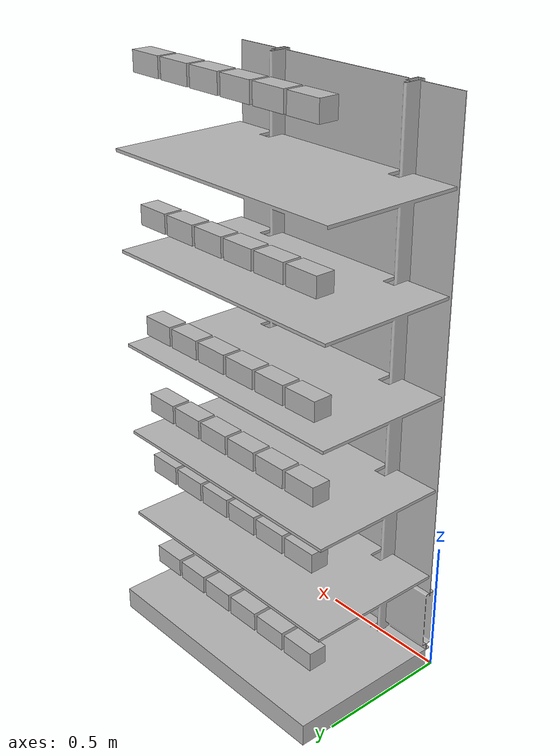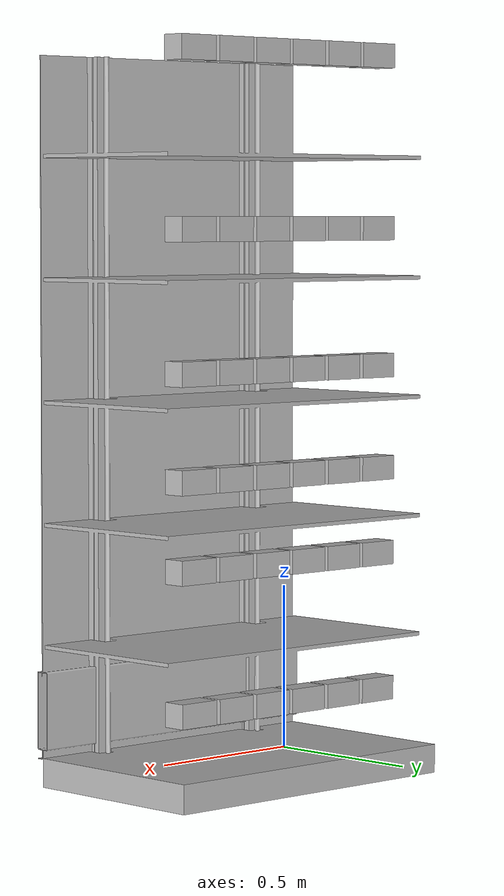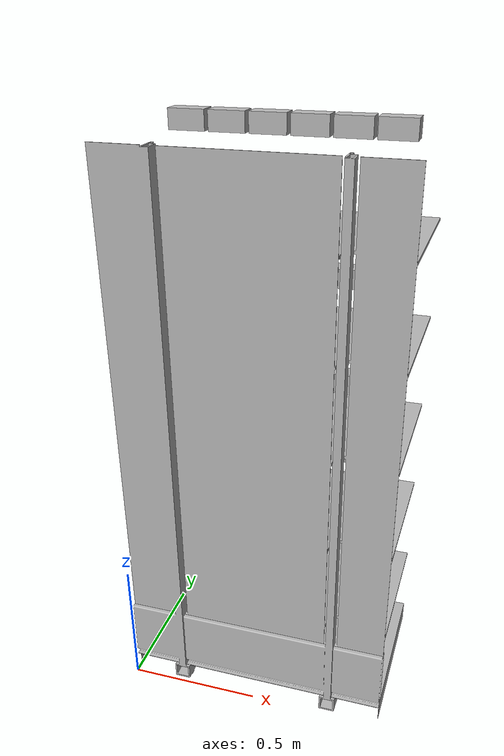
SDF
<?xml version="1.0"?>
<sdf version='1.6'>
  <model name='AH_shelf_filled_thee'>
    <static>1</static>
    <link name='link'>
      <inertial>
        <mass>1</mass>
        <inertia>
          <ixx>1</ixx>
          <ixy>0</ixy>
          <ixz>0</ixz>
          <iyy>1</iyy>
          <iyz>0</iyz>
          <izz>1</izz>
        </inertia>
      </inertial>
      <pose frame=''>-0 0 0 0 0 0</pose>

      <visual name='visual'>
        <pose frame=''>0 0 0 0 0 0</pose>
        <geometry>
          <mesh>
            <uri>model://AH_shelf/AH_shelf.dae</uri>
            <scale>1 1 1</scale>
          </mesh>
        </geometry>
        <transparency>0</transparency>
        <cast_shadows>1</cast_shadows>
      </visual>

      <collision name='collision'>
        <laser_retro>0</laser_retro>
        <max_contacts>10</max_contacts>
        <pose frame=''>0 0 0 0 -0 0</pose>
        <geometry>
          <mesh>
            <uri>model://AH_shelf/AH_shelf.dae</uri>
            <scale>1 1 1</scale>
          </mesh>
        </geometry>
        <surface>
          <friction>
            <ode>
              <mu>1</mu>
              <mu2>1</mu2>
              <fdir1>0 0 0</fdir1>
              <slip1>0</slip1>
              <slip2>0</slip2>
            </ode>
            <torsional>
              <coefficient>1</coefficient>
              <patch_radius>0</patch_radius>
              <surface_radius>0</surface_radius>
              <use_patch_radius>1</use_patch_radius>
              <ode>
                <slip>0</slip>
              </ode>
            </torsional>
          </friction>
          <bounce>
            <restitution_coefficient>0</restitution_coefficient>
            <threshold>1e+06</threshold>
          </bounce>
          <contact>
            <collide_without_contact>0</collide_without_contact>
            <collide_without_contact_bitmask>1</collide_without_contact_bitmask>
            <collide_bitmask>1</collide_bitmask>
            <ode>
              <soft_cfm>0</soft_cfm>
              <soft_erp>0.2</soft_erp>
              <kp>1e+13</kp>
              <kd>1</kd>
              <max_vel>0.01</max_vel>
              <min_depth>0</min_depth>
            </ode>
            <bullet>
              <split_impulse>1</split_impulse>
              <split_impulse_penetration_threshold>-0.01</split_impulse_penetration_threshold>
              <soft_cfm>0</soft_cfm>
              <soft_erp>0.2</soft_erp>
              <kp>1e+13</kp>
              <kd>1</kd>
            </bullet>
          </contact>
        </surface>
      </collision>
    </link>

  <model name="board0">
    <pose>0 0.5 2.1 0 0 0</pose>

    <include>
      <uri>model://AH_thee_bosvruchten_tag36_11_00100</uri>
      <pose>0.14285714285714285 0 0 0 0 1.57</pose>
    </include>

    <include>
      <uri>model://AH_thee_bosvruchten_tag36_11_00101</uri>
      <pose>0.2857142857142857 0 0 0 0 1.57</pose>
    </include>

    <include>
      <uri>model://AH_thee_bosvruchten_tag36_11_00102</uri>
      <pose>0.42857142857142855 0 0 0 0 1.57</pose>
    </include>

    <include>
      <uri>model://AH_thee_bosvruchten_tag36_11_00103</uri>
      <pose>0.5714285714285714 0 0 0 0 1.57</pose>
    </include>

    <include>
      <uri>model://AH_thee_bosvruchten_tag36_11_00104</uri>
      <pose>0.7142857142857142 0 0 0 0 1.57</pose>
    </include>

    <include>
      <uri>model://AH_thee_bosvruchten_tag36_11_00105</uri>
      <pose>0.8571428571428571 0 0 0 0 1.57</pose>
    </include>

  </model>

  <model name="board1">
    <pose>0 0.5 1.6 0 0 0</pose>

    <include>
      <uri>model://AH_thee_bosvruchten_tag36_11_00106</uri>
      <pose>0.14285714285714285 0 0 0 0 1.57</pose>
    </include>

    <include>
      <uri>model://AH_thee_bosvruchten_tag36_11_00107</uri>
      <pose>0.2857142857142857 0 0 0 0 1.57</pose>
    </include>

    <include>
      <uri>model://AH_thee_bosvruchten_tag36_11_00108</uri>
      <pose>0.42857142857142855 0 0 0 0 1.57</pose>
    </include>

    <include>
      <uri>model://AH_thee_bosvruchten_tag36_11_00109</uri>
      <pose>0.5714285714285714 0 0 0 0 1.57</pose>
    </include>

    <include>
      <uri>model://AH_thee_bosvruchten_tag36_11_00111</uri>
      <pose>0.7142857142857142 0 0 0 0 1.57</pose>
    </include>

    <include>
      <uri>model://AH_thee_bosvruchten_tag36_11_00112</uri>
      <pose>0.8571428571428571 0 0 0 0 1.57</pose>
    </include>

  </model>

  <model name="board2">
    <pose>0 0.5 1.2 0 0 0</pose>

    <include>
      <uri>model://AH_thee_bosvruchten_tag36_11_00113</uri>
      <pose>0.14285714285714285 0 0 0 0 1.57</pose>
    </include>

    <include>
      <uri>model://AH_thee_bosvruchten_tag36_11_00114</uri>
      <pose>0.2857142857142857 0 0 0 0 1.57</pose>
    </include>

    <include>
      <uri>model://AH_thee_bosvruchten_tag36_11_00115</uri>
      <pose>0.42857142857142855 0 0 0 0 1.57</pose>
    </include>

    <include>
      <uri>model://AH_thee_bosvruchten_tag36_11_00116</uri>
      <pose>0.5714285714285714 0 0 0 0 1.57</pose>
    </include>

    <include>
      <uri>model://AH_thee_bosvruchten_tag36_11_00117</uri>
      <pose>0.7142857142857142 0 0 0 0 1.57</pose>
    </include>

    <include>
      <uri>model://AH_thee_bosvruchten_tag36_11_00118</uri>
      <pose>0.8571428571428571 0 0 0 0 1.57</pose>
    </include>

  </model>

  <model name="board3">
    <pose>0 0.5 0.9 0 0 0</pose>

    <include>
      <uri>model://AH_thee_mango_tag36_11_00121</uri>
      <pose>0.14285714285714285 0 0 0 0 1.57</pose>
    </include>

    <include>
      <uri>model://AH_thee_mango_tag36_11_00122</uri>
      <pose>0.2857142857142857 0 0 0 0 1.57</pose>
    </include>

    <include>
      <uri>model://AH_thee_mango_tag36_11_00123</uri>
      <pose>0.42857142857142855 0 0 0 0 1.57</pose>
    </include>

    <include>
      <uri>model://AH_thee_mango_tag36_11_00124</uri>
      <pose>0.5714285714285714 0 0 0 0 1.57</pose>
    </include>

    <include>
      <uri>model://AH_thee_mango_tag36_11_00125</uri>
      <pose>0.7142857142857142 0 0 0 0 1.57</pose>
    </include>

    <include>
      <uri>model://AH_thee_mango_tag36_11_00126</uri>
      <pose>0.8571428571428571 0 0 0 0 1.57</pose>
    </include>

  </model>

  <model name="board4">
    <pose>0 0.5 0.65 0 0 0</pose>

    <include>
      <uri>model://AH_thee_mango_tag36_11_00127</uri>
      <pose>0.14285714285714285 0 0 0 0 1.57</pose>
    </include>

    <include>
      <uri>model://AH_thee_mango_tag36_11_00128</uri>
      <pose>0.2857142857142857 0 0 0 0 1.57</pose>
    </include>

    <include>
      <uri>model://AH_thee_mango_tag36_11_00129</uri>
      <pose>0.42857142857142855 0 0 0 0 1.57</pose>
    </include>

    <include>
      <uri>model://AH_thee_mango_tag36_11_00130</uri>
      <pose>0.5714285714285714 0 0 0 0 1.57</pose>
    </include>

    <include>
      <uri>model://AH_thee_mango_tag36_11_00131</uri>
      <pose>0.7142857142857142 0 0 0 0 1.57</pose>
    </include>

    <include>
      <uri>model://AH_thee_mango_tag36_11_00132</uri>
      <pose>0.8571428571428571 0 0 0 0 1.57</pose>
    </include>

  </model>

  <model name="board5">
    <pose>0 0.5 0.25 0 0 0</pose>

    <include>
      <uri>model://AH_thee_mango_tag36_11_00133</uri>
      <pose>0.14285714285714285 0 0 0 0 1.57</pose>
    </include>

    <include>
      <uri>model://AH_thee_mango_tag36_11_00134</uri>
      <pose>0.2857142857142857 0 0 0 0 1.57</pose>
    </include>

    <include>
      <uri>model://AH_thee_mango_tag36_11_00135</uri>
      <pose>0.42857142857142855 0 0 0 0 1.57</pose>
    </include>

    <include>
      <uri>model://AH_thee_mango_tag36_11_00136</uri>
      <pose>0.5714285714285714 0 0 0 0 1.57</pose>
    </include>

    <include>
      <uri>model://AH_thee_mango_tag36_11_00137</uri>
      <pose>0.7142857142857142 0 0 0 0 1.57</pose>
    </include>

    <include>
      <uri>model://AH_thee_mango_tag36_11_00138</uri>
      <pose>0.8571428571428571 0 0 0 0 1.57</pose>
    </include>

  </model>

  </model>
</sdf>

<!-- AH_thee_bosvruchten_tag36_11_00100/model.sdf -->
<sdf version='1.6'>
  <model name='AH_thee_bosvruchten_tag36_11_00100'>
    <static>0</static>
    <link name='link_0'>

      <inertial>
        <mass>0.1</mass>
        <inertia>
          <ixx>1.4e-03</ixx>
          <ixy>0</ixy>
          <ixz>0</ixz>
          <iyy>1.4e-03</iyy>
          <iyz>0</iyz>
          <izz>2.8e-03</izz>
        </inertia>
      </inertial>

      <pose frame=''>-0 0 0 0 -0 0</pose>

      <visual name='visual'>
        <pose frame=''>0 0 0 0 -0 0</pose>
        <geometry>
          <mesh>
            <uri>model://AH_thee_bosvruchten/AH_thee_bosvruchten_tag36_11_00100/AH_thee_bosvruchten_tag36_11_00100.dae</uri>
            <scale>1 1 1</scale>
          </mesh>
        </geometry>
        <transparency>0</transparency>
        <cast_shadows>1</cast_shadows>
      </visual>

      <collision name='collision'>
        <laser_retro>0</laser_retro>
        <max_contacts>10</max_contacts>
        <pose frame=''>0 0 0 0 -0 0</pose>
        <geometry>
          <mesh>
            <uri>model://AH_thee_bosvruchten/AH_thee_bosvruchten_tag36_11_00100/AH_thee_bosvruchten_tag36_11_00100.dae</uri>
            <scale>1 1 1</scale>
          </mesh>
        </geometry>
        <surface>
          <friction>
            <ode>
              <mu>1</mu>
              <mu2>1</mu2>
              <fdir1>0 0 0</fdir1>
              <slip1>0</slip1>
              <slip2>0</slip2>
            </ode>
            <torsional>
              <coefficient>1</coefficient>
              <patch_radius>0</patch_radius>
              <surface_radius>0</surface_radius>
              <use_patch_radius>1</use_patch_radius>
              <ode>
                <slip>0</slip>
              </ode>
            </torsional>
          </friction>
          <bounce>
            <restitution_coefficient>0</restitution_coefficient>
            <threshold>1e+06</threshold>
          </bounce>
          <contact>
            <collide_without_contact>0</collide_without_contact>
            <collide_without_contact_bitmask>1</collide_without_contact_bitmask>
            <collide_bitmask>1</collide_bitmask>
            <ode>
              <soft_cfm>0</soft_cfm>
              <soft_erp>0.2</soft_erp>
              <kp>1e+13</kp>
              <kd>1</kd>
              <max_vel>0.01</max_vel>
              <min_depth>0</min_depth>
            </ode>
            <bullet>
              <split_impulse>1</split_impulse>
              <split_impulse_penetration_threshold>-0.01</split_impulse_penetration_threshold>
              <soft_cfm>0</soft_cfm>
              <soft_erp>0.2</soft_erp>
              <kp>1e+13</kp>
              <kd>1</kd>
            </bullet>
          </contact>
        </surface>
      </collision>

    </link>
  </model>
</sdf>

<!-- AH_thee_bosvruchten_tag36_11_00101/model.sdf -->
<sdf version='1.6'>
  <model name='AH_thee_bosvruchten_tag36_11_00101'>
    <static>0</static>
    <link name='link_0'>

      <inertial>
        <mass>0.1</mass>
        <inertia>
          <ixx>1.4e-03</ixx>
          <ixy>0</ixy>
          <ixz>0</ixz>
          <iyy>1.4e-03</iyy>
          <iyz>0</iyz>
          <izz>2.8e-03</izz>
        </inertia>
      </inertial>

      <pose frame=''>-0 0 0 0 -0 0</pose>

      <visual name='visual'>
        <pose frame=''>0 0 0 0 -0 0</pose>
        <geometry>
          <mesh>
            <uri>model://AH_thee_bosvruchten/AH_thee_bosvruchten_tag36_11_00101/AH_thee_bosvruchten_tag36_11_00101.dae</uri>
            <scale>1 1 1</scale>
          </mesh>
        </geometry>
        <transparency>0</transparency>
        <cast_shadows>1</cast_shadows>
      </visual>

      <collision name='collision'>
        <laser_retro>0</laser_retro>
        <max_contacts>10</max_contacts>
        <pose frame=''>0 0 0 0 -0 0</pose>
        <geometry>
          <mesh>
            <uri>model://AH_thee_bosvruchten/AH_thee_bosvruchten_tag36_11_00101/AH_thee_bosvruchten_tag36_11_00101.dae</uri>
            <scale>1 1 1</scale>
          </mesh>
        </geometry>
        <surface>
          <friction>
            <ode>
              <mu>1</mu>
              <mu2>1</mu2>
              <fdir1>0 0 0</fdir1>
              <slip1>0</slip1>
              <slip2>0</slip2>
            </ode>
            <torsional>
              <coefficient>1</coefficient>
              <patch_radius>0</patch_radius>
              <surface_radius>0</surface_radius>
              <use_patch_radius>1</use_patch_radius>
              <ode>
                <slip>0</slip>
              </ode>
            </torsional>
          </friction>
          <bounce>
            <restitution_coefficient>0</restitution_coefficient>
            <threshold>1e+06</threshold>
          </bounce>
          <contact>
            <collide_without_contact>0</collide_without_contact>
            <collide_without_contact_bitmask>1</collide_without_contact_bitmask>
            <collide_bitmask>1</collide_bitmask>
            <ode>
              <soft_cfm>0</soft_cfm>
              <soft_erp>0.2</soft_erp>
              <kp>1e+13</kp>
              <kd>1</kd>
              <max_vel>0.01</max_vel>
              <min_depth>0</min_depth>
            </ode>
            <bullet>
              <split_impulse>1</split_impulse>
              <split_impulse_penetration_threshold>-0.01</split_impulse_penetration_threshold>
              <soft_cfm>0</soft_cfm>
              <soft_erp>0.2</soft_erp>
              <kp>1e+13</kp>
              <kd>1</kd>
            </bullet>
          </contact>
        </surface>
      </collision>

    </link>
  </model>
</sdf>

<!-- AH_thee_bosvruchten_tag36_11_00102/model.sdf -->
<sdf version='1.6'>
  <model name='AH_thee_bosvruchten_tag36_11_00102'>
    <static>0</static>
    <link name='link_0'>

      <inertial>
        <mass>0.1</mass>
        <inertia>
          <ixx>1.4e-03</ixx>
          <ixy>0</ixy>
          <ixz>0</ixz>
          <iyy>1.4e-03</iyy>
          <iyz>0</iyz>
          <izz>2.8e-03</izz>
        </inertia>
      </inertial>

      <pose frame=''>-0 0 0 0 -0 0</pose>

      <visual name='visual'>
        <pose frame=''>0 0 0 0 -0 0</pose>
        <geometry>
          <mesh>
            <uri>model://AH_thee_bosvruchten/AH_thee_bosvruchten_tag36_11_00102/AH_thee_bosvruchten_tag36_11_00102.dae</uri>
            <scale>1 1 1</scale>
          </mesh>
        </geometry>
        <transparency>0</transparency>
        <cast_shadows>1</cast_shadows>
      </visual>

      <collision name='collision'>
        <laser_retro>0</laser_retro>
        <max_contacts>10</max_contacts>
        <pose frame=''>0 0 0 0 -0 0</pose>
        <geometry>
          <mesh>
            <uri>model://AH_thee_bosvruchten/AH_thee_bosvruchten_tag36_11_00102/AH_thee_bosvruchten_tag36_11_00102.dae</uri>
            <scale>1 1 1</scale>
          </mesh>
        </geometry>
        <surface>
          <friction>
            <ode>
              <mu>1</mu>
              <mu2>1</mu2>
              <fdir1>0 0 0</fdir1>
              <slip1>0</slip1>
              <slip2>0</slip2>
            </ode>
            <torsional>
              <coefficient>1</coefficient>
              <patch_radius>0</patch_radius>
              <surface_radius>0</surface_radius>
              <use_patch_radius>1</use_patch_radius>
              <ode>
                <slip>0</slip>
              </ode>
            </torsional>
          </friction>
          <bounce>
            <restitution_coefficient>0</restitution_coefficient>
            <threshold>1e+06</threshold>
          </bounce>
          <contact>
            <collide_without_contact>0</collide_without_contact>
            <collide_without_contact_bitmask>1</collide_without_contact_bitmask>
            <collide_bitmask>1</collide_bitmask>
            <ode>
              <soft_cfm>0</soft_cfm>
              <soft_erp>0.2</soft_erp>
              <kp>1e+13</kp>
              <kd>1</kd>
              <max_vel>0.01</max_vel>
              <min_depth>0</min_depth>
            </ode>
            <bullet>
              <split_impulse>1</split_impulse>
              <split_impulse_penetration_threshold>-0.01</split_impulse_penetration_threshold>
              <soft_cfm>0</soft_cfm>
              <soft_erp>0.2</soft_erp>
              <kp>1e+13</kp>
              <kd>1</kd>
            </bullet>
          </contact>
        </surface>
      </collision>

    </link>
  </model>
</sdf>

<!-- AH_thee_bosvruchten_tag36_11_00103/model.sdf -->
<sdf version='1.6'>
  <model name='AH_thee_bosvruchten_tag36_11_00103'>
    <static>0</static>
    <link name='link_0'>

      <inertial>
        <mass>0.1</mass>
        <inertia>
          <ixx>1.4e-03</ixx>
          <ixy>0</ixy>
          <ixz>0</ixz>
          <iyy>1.4e-03</iyy>
          <iyz>0</iyz>
          <izz>2.8e-03</izz>
        </inertia>
      </inertial>

      <pose frame=''>-0 0 0 0 -0 0</pose>

      <visual name='visual'>
        <pose frame=''>0 0 0 0 -0 0</pose>
        <geometry>
          <mesh>
            <uri>model://AH_thee_bosvruchten/AH_thee_bosvruchten_tag36_11_00103/AH_thee_bosvruchten_tag36_11_00103.dae</uri>
            <scale>1 1 1</scale>
          </mesh>
        </geometry>
        <transparency>0</transparency>
        <cast_shadows>1</cast_shadows>
      </visual>

      <collision name='collision'>
        <laser_retro>0</laser_retro>
        <max_contacts>10</max_contacts>
        <pose frame=''>0 0 0 0 -0 0</pose>
        <geometry>
          <mesh>
            <uri>model://AH_thee_bosvruchten/AH_thee_bosvruchten_tag36_11_00103/AH_thee_bosvruchten_tag36_11_00103.dae</uri>
            <scale>1 1 1</scale>
          </mesh>
        </geometry>
        <surface>
          <friction>
            <ode>
              <mu>1</mu>
              <mu2>1</mu2>
              <fdir1>0 0 0</fdir1>
              <slip1>0</slip1>
              <slip2>0</slip2>
            </ode>
            <torsional>
              <coefficient>1</coefficient>
              <patch_radius>0</patch_radius>
              <surface_radius>0</surface_radius>
              <use_patch_radius>1</use_patch_radius>
              <ode>
                <slip>0</slip>
              </ode>
            </torsional>
          </friction>
          <bounce>
            <restitution_coefficient>0</restitution_coefficient>
            <threshold>1e+06</threshold>
          </bounce>
          <contact>
            <collide_without_contact>0</collide_without_contact>
            <collide_without_contact_bitmask>1</collide_without_contact_bitmask>
            <collide_bitmask>1</collide_bitmask>
            <ode>
              <soft_cfm>0</soft_cfm>
              <soft_erp>0.2</soft_erp>
              <kp>1e+13</kp>
              <kd>1</kd>
              <max_vel>0.01</max_vel>
              <min_depth>0</min_depth>
            </ode>
            <bullet>
              <split_impulse>1</split_impulse>
              <split_impulse_penetration_threshold>-0.01</split_impulse_penetration_threshold>
              <soft_cfm>0</soft_cfm>
              <soft_erp>0.2</soft_erp>
              <kp>1e+13</kp>
              <kd>1</kd>
            </bullet>
          </contact>
        </surface>
      </collision>

    </link>
  </model>
</sdf>

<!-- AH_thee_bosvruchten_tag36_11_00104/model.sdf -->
<sdf version='1.6'>
  <model name='AH_thee_bosvruchten_tag36_11_00104'>
    <static>0</static>
    <link name='link_0'>

      <inertial>
        <mass>0.1</mass>
        <inertia>
          <ixx>1.4e-03</ixx>
          <ixy>0</ixy>
          <ixz>0</ixz>
          <iyy>1.4e-03</iyy>
          <iyz>0</iyz>
          <izz>2.8e-03</izz>
        </inertia>
      </inertial>

      <pose frame=''>-0 0 0 0 -0 0</pose>

      <visual name='visual'>
        <pose frame=''>0 0 0 0 -0 0</pose>
        <geometry>
          <mesh>
            <uri>model://AH_thee_bosvruchten/AH_thee_bosvruchten_tag36_11_00104/AH_thee_bosvruchten_tag36_11_00104.dae</uri>
            <scale>1 1 1</scale>
          </mesh>
        </geometry>
        <transparency>0</transparency>
        <cast_shadows>1</cast_shadows>
      </visual>

      <collision name='collision'>
        <laser_retro>0</laser_retro>
        <max_contacts>10</max_contacts>
        <pose frame=''>0 0 0 0 -0 0</pose>
        <geometry>
          <mesh>
            <uri>model://AH_thee_bosvruchten/AH_thee_bosvruchten_tag36_11_00104/AH_thee_bosvruchten_tag36_11_00104.dae</uri>
            <scale>1 1 1</scale>
          </mesh>
        </geometry>
        <surface>
          <friction>
            <ode>
              <mu>1</mu>
              <mu2>1</mu2>
              <fdir1>0 0 0</fdir1>
              <slip1>0</slip1>
              <slip2>0</slip2>
            </ode>
            <torsional>
              <coefficient>1</coefficient>
              <patch_radius>0</patch_radius>
              <surface_radius>0</surface_radius>
              <use_patch_radius>1</use_patch_radius>
              <ode>
                <slip>0</slip>
              </ode>
            </torsional>
          </friction>
          <bounce>
            <restitution_coefficient>0</restitution_coefficient>
            <threshold>1e+06</threshold>
          </bounce>
          <contact>
            <collide_without_contact>0</collide_without_contact>
            <collide_without_contact_bitmask>1</collide_without_contact_bitmask>
            <collide_bitmask>1</collide_bitmask>
            <ode>
              <soft_cfm>0</soft_cfm>
              <soft_erp>0.2</soft_erp>
              <kp>1e+13</kp>
              <kd>1</kd>
              <max_vel>0.01</max_vel>
              <min_depth>0</min_depth>
            </ode>
            <bullet>
              <split_impulse>1</split_impulse>
              <split_impulse_penetration_threshold>-0.01</split_impulse_penetration_threshold>
              <soft_cfm>0</soft_cfm>
              <soft_erp>0.2</soft_erp>
              <kp>1e+13</kp>
              <kd>1</kd>
            </bullet>
          </contact>
        </surface>
      </collision>

    </link>
  </model>
</sdf>

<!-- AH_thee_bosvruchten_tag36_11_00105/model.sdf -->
<sdf version='1.6'>
  <model name='AH_thee_bosvruchten_tag36_11_00105'>
    <static>0</static>
    <link name='link_0'>

      <inertial>
        <mass>0.1</mass>
        <inertia>
          <ixx>1.4e-03</ixx>
          <ixy>0</ixy>
          <ixz>0</ixz>
          <iyy>1.4e-03</iyy>
          <iyz>0</iyz>
          <izz>2.8e-03</izz>
        </inertia>
      </inertial>

      <pose frame=''>-0 0 0 0 -0 0</pose>

      <visual name='visual'>
        <pose frame=''>0 0 0 0 -0 0</pose>
        <geometry>
          <mesh>
            <uri>model://AH_thee_bosvruchten/AH_thee_bosvruchten_tag36_11_00105/AH_thee_bosvruchten_tag36_11_00105.dae</uri>
            <scale>1 1 1</scale>
          </mesh>
        </geometry>
        <transparency>0</transparency>
        <cast_shadows>1</cast_shadows>
      </visual>

      <collision name='collision'>
        <laser_retro>0</laser_retro>
        <max_contacts>10</max_contacts>
        <pose frame=''>0 0 0 0 -0 0</pose>
        <geometry>
          <mesh>
            <uri>model://AH_thee_bosvruchten/AH_thee_bosvruchten_tag36_11_00105/AH_thee_bosvruchten_tag36_11_00105.dae</uri>
            <scale>1 1 1</scale>
          </mesh>
        </geometry>
        <surface>
          <friction>
            <ode>
              <mu>1</mu>
              <mu2>1</mu2>
              <fdir1>0 0 0</fdir1>
              <slip1>0</slip1>
              <slip2>0</slip2>
            </ode>
            <torsional>
              <coefficient>1</coefficient>
              <patch_radius>0</patch_radius>
              <surface_radius>0</surface_radius>
              <use_patch_radius>1</use_patch_radius>
              <ode>
                <slip>0</slip>
              </ode>
            </torsional>
          </friction>
          <bounce>
            <restitution_coefficient>0</restitution_coefficient>
            <threshold>1e+06</threshold>
          </bounce>
          <contact>
            <collide_without_contact>0</collide_without_contact>
            <collide_without_contact_bitmask>1</collide_without_contact_bitmask>
            <collide_bitmask>1</collide_bitmask>
            <ode>
              <soft_cfm>0</soft_cfm>
              <soft_erp>0.2</soft_erp>
              <kp>1e+13</kp>
              <kd>1</kd>
              <max_vel>0.01</max_vel>
              <min_depth>0</min_depth>
            </ode>
            <bullet>
              <split_impulse>1</split_impulse>
              <split_impulse_penetration_threshold>-0.01</split_impulse_penetration_threshold>
              <soft_cfm>0</soft_cfm>
              <soft_erp>0.2</soft_erp>
              <kp>1e+13</kp>
              <kd>1</kd>
            </bullet>
          </contact>
        </surface>
      </collision>

    </link>
  </model>
</sdf>

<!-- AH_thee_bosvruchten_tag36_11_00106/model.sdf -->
<sdf version='1.6'>
  <model name='AH_thee_bosvruchten_tag36_11_00106'>
    <static>0</static>
    <link name='link_0'>

      <inertial>
        <mass>0.1</mass>
        <inertia>
          <ixx>1.4e-03</ixx>
          <ixy>0</ixy>
          <ixz>0</ixz>
          <iyy>1.4e-03</iyy>
          <iyz>0</iyz>
          <izz>2.8e-03</izz>
        </inertia>
      </inertial>

      <pose frame=''>-0 0 0 0 -0 0</pose>

      <visual name='visual'>
        <pose frame=''>0 0 0 0 -0 0</pose>
        <geometry>
          <mesh>
            <uri>model://AH_thee_bosvruchten/AH_thee_bosvruchten_tag36_11_00106/AH_thee_bosvruchten_tag36_11_00106.dae</uri>
            <scale>1 1 1</scale>
          </mesh>
        </geometry>
        <transparency>0</transparency>
        <cast_shadows>1</cast_shadows>
      </visual>

      <collision name='collision'>
        <laser_retro>0</laser_retro>
        <max_contacts>10</max_contacts>
        <pose frame=''>0 0 0 0 -0 0</pose>
        <geometry>
          <mesh>
            <uri>model://AH_thee_bosvruchten/AH_thee_bosvruchten_tag36_11_00106/AH_thee_bosvruchten_tag36_11_00106.dae</uri>
            <scale>1 1 1</scale>
          </mesh>
        </geometry>
        <surface>
          <friction>
            <ode>
              <mu>1</mu>
              <mu2>1</mu2>
              <fdir1>0 0 0</fdir1>
              <slip1>0</slip1>
              <slip2>0</slip2>
            </ode>
            <torsional>
              <coefficient>1</coefficient>
              <patch_radius>0</patch_radius>
              <surface_radius>0</surface_radius>
              <use_patch_radius>1</use_patch_radius>
              <ode>
                <slip>0</slip>
              </ode>
            </torsional>
          </friction>
          <bounce>
            <restitution_coefficient>0</restitution_coefficient>
            <threshold>1e+06</threshold>
          </bounce>
          <contact>
            <collide_without_contact>0</collide_without_contact>
            <collide_without_contact_bitmask>1</collide_without_contact_bitmask>
            <collide_bitmask>1</collide_bitmask>
            <ode>
              <soft_cfm>0</soft_cfm>
              <soft_erp>0.2</soft_erp>
              <kp>1e+13</kp>
              <kd>1</kd>
              <max_vel>0.01</max_vel>
              <min_depth>0</min_depth>
            </ode>
            <bullet>
              <split_impulse>1</split_impulse>
              <split_impulse_penetration_threshold>-0.01</split_impulse_penetration_threshold>
              <soft_cfm>0</soft_cfm>
              <soft_erp>0.2</soft_erp>
              <kp>1e+13</kp>
              <kd>1</kd>
            </bullet>
          </contact>
        </surface>
      </collision>

    </link>
  </model>
</sdf>

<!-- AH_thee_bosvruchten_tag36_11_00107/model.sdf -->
<sdf version='1.6'>
  <model name='AH_thee_bosvruchten_tag36_11_00107'>
    <static>0</static>
    <link name='link_0'>

      <inertial>
        <mass>0.1</mass>
        <inertia>
          <ixx>1.4e-03</ixx>
          <ixy>0</ixy>
          <ixz>0</ixz>
          <iyy>1.4e-03</iyy>
          <iyz>0</iyz>
          <izz>2.8e-03</izz>
        </inertia>
      </inertial>

      <pose frame=''>-0 0 0 0 -0 0</pose>

      <visual name='visual'>
        <pose frame=''>0 0 0 0 -0 0</pose>
        <geometry>
          <mesh>
            <uri>model://AH_thee_bosvruchten/AH_thee_bosvruchten_tag36_11_00107/AH_thee_bosvruchten_tag36_11_00107.dae</uri>
            <scale>1 1 1</scale>
          </mesh>
        </geometry>
        <transparency>0</transparency>
        <cast_shadows>1</cast_shadows>
      </visual>

      <collision name='collision'>
        <laser_retro>0</laser_retro>
        <max_contacts>10</max_contacts>
        <pose frame=''>0 0 0 0 -0 0</pose>
        <geometry>
          <mesh>
            <uri>model://AH_thee_bosvruchten/AH_thee_bosvruchten_tag36_11_00107/AH_thee_bosvruchten_tag36_11_00107.dae</uri>
            <scale>1 1 1</scale>
          </mesh>
        </geometry>
        <surface>
          <friction>
            <ode>
              <mu>1</mu>
              <mu2>1</mu2>
              <fdir1>0 0 0</fdir1>
              <slip1>0</slip1>
              <slip2>0</slip2>
            </ode>
            <torsional>
              <coefficient>1</coefficient>
              <patch_radius>0</patch_radius>
              <surface_radius>0</surface_radius>
              <use_patch_radius>1</use_patch_radius>
              <ode>
                <slip>0</slip>
              </ode>
            </torsional>
          </friction>
          <bounce>
            <restitution_coefficient>0</restitution_coefficient>
            <threshold>1e+06</threshold>
          </bounce>
          <contact>
            <collide_without_contact>0</collide_without_contact>
            <collide_without_contact_bitmask>1</collide_without_contact_bitmask>
            <collide_bitmask>1</collide_bitmask>
            <ode>
              <soft_cfm>0</soft_cfm>
              <soft_erp>0.2</soft_erp>
              <kp>1e+13</kp>
              <kd>1</kd>
              <max_vel>0.01</max_vel>
              <min_depth>0</min_depth>
            </ode>
            <bullet>
              <split_impulse>1</split_impulse>
              <split_impulse_penetration_threshold>-0.01</split_impulse_penetration_threshold>
              <soft_cfm>0</soft_cfm>
              <soft_erp>0.2</soft_erp>
              <kp>1e+13</kp>
              <kd>1</kd>
            </bullet>
          </contact>
        </surface>
      </collision>

    </link>
  </model>
</sdf>

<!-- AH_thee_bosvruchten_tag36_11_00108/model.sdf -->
<sdf version='1.6'>
  <model name='AH_thee_bosvruchten_tag36_11_00108'>
    <static>0</static>
    <link name='link_0'>

      <inertial>
        <mass>0.1</mass>
        <inertia>
          <ixx>1.4e-03</ixx>
          <ixy>0</ixy>
          <ixz>0</ixz>
          <iyy>1.4e-03</iyy>
          <iyz>0</iyz>
          <izz>2.8e-03</izz>
        </inertia>
      </inertial>

      <pose frame=''>-0 0 0 0 -0 0</pose>

      <visual name='visual'>
        <pose frame=''>0 0 0 0 -0 0</pose>
        <geometry>
          <mesh>
            <uri>model://AH_thee_bosvruchten/AH_thee_bosvruchten_tag36_11_00108/AH_thee_bosvruchten_tag36_11_00108.dae</uri>
            <scale>1 1 1</scale>
          </mesh>
        </geometry>
        <transparency>0</transparency>
        <cast_shadows>1</cast_shadows>
      </visual>

      <collision name='collision'>
        <laser_retro>0</laser_retro>
        <max_contacts>10</max_contacts>
        <pose frame=''>0 0 0 0 -0 0</pose>
        <geometry>
          <mesh>
            <uri>model://AH_thee_bosvruchten/AH_thee_bosvruchten_tag36_11_00108/AH_thee_bosvruchten_tag36_11_00108.dae</uri>
            <scale>1 1 1</scale>
          </mesh>
        </geometry>
        <surface>
          <friction>
            <ode>
              <mu>1</mu>
              <mu2>1</mu2>
              <fdir1>0 0 0</fdir1>
              <slip1>0</slip1>
              <slip2>0</slip2>
            </ode>
            <torsional>
              <coefficient>1</coefficient>
              <patch_radius>0</patch_radius>
              <surface_radius>0</surface_radius>
              <use_patch_radius>1</use_patch_radius>
              <ode>
                <slip>0</slip>
              </ode>
            </torsional>
          </friction>
          <bounce>
            <restitution_coefficient>0</restitution_coefficient>
            <threshold>1e+06</threshold>
          </bounce>
          <contact>
            <collide_without_contact>0</collide_without_contact>
            <collide_without_contact_bitmask>1</collide_without_contact_bitmask>
            <collide_bitmask>1</collide_bitmask>
            <ode>
              <soft_cfm>0</soft_cfm>
              <soft_erp>0.2</soft_erp>
              <kp>1e+13</kp>
              <kd>1</kd>
              <max_vel>0.01</max_vel>
              <min_depth>0</min_depth>
            </ode>
            <bullet>
              <split_impulse>1</split_impulse>
              <split_impulse_penetration_threshold>-0.01</split_impulse_penetration_threshold>
              <soft_cfm>0</soft_cfm>
              <soft_erp>0.2</soft_erp>
              <kp>1e+13</kp>
              <kd>1</kd>
            </bullet>
          </contact>
        </surface>
      </collision>

    </link>
  </model>
</sdf>

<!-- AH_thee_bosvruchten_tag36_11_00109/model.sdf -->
<sdf version='1.6'>
  <model name='AH_thee_bosvruchten_tag36_11_00109'>
    <static>0</static>
    <link name='link_0'>

      <inertial>
        <mass>0.1</mass>
        <inertia>
          <ixx>1.4e-03</ixx>
          <ixy>0</ixy>
          <ixz>0</ixz>
          <iyy>1.4e-03</iyy>
          <iyz>0</iyz>
          <izz>2.8e-03</izz>
        </inertia>
      </inertial>

      <pose frame=''>-0 0 0 0 -0 0</pose>

      <visual name='visual'>
        <pose frame=''>0 0 0 0 -0 0</pose>
        <geometry>
          <mesh>
            <uri>model://AH_thee_bosvruchten/AH_thee_bosvruchten_tag36_11_00109/AH_thee_bosvruchten_tag36_11_00109.dae</uri>
            <scale>1 1 1</scale>
          </mesh>
        </geometry>
        <transparency>0</transparency>
        <cast_shadows>1</cast_shadows>
      </visual>

      <collision name='collision'>
        <laser_retro>0</laser_retro>
        <max_contacts>10</max_contacts>
        <pose frame=''>0 0 0 0 -0 0</pose>
        <geometry>
          <mesh>
            <uri>model://AH_thee_bosvruchten/AH_thee_bosvruchten_tag36_11_00109/AH_thee_bosvruchten_tag36_11_00109.dae</uri>
            <scale>1 1 1</scale>
          </mesh>
        </geometry>
        <surface>
          <friction>
            <ode>
              <mu>1</mu>
              <mu2>1</mu2>
              <fdir1>0 0 0</fdir1>
              <slip1>0</slip1>
              <slip2>0</slip2>
            </ode>
            <torsional>
              <coefficient>1</coefficient>
              <patch_radius>0</patch_radius>
              <surface_radius>0</surface_radius>
              <use_patch_radius>1</use_patch_radius>
              <ode>
                <slip>0</slip>
              </ode>
            </torsional>
          </friction>
          <bounce>
            <restitution_coefficient>0</restitution_coefficient>
            <threshold>1e+06</threshold>
          </bounce>
          <contact>
            <collide_without_contact>0</collide_without_contact>
            <collide_without_contact_bitmask>1</collide_without_contact_bitmask>
            <collide_bitmask>1</collide_bitmask>
            <ode>
              <soft_cfm>0</soft_cfm>
              <soft_erp>0.2</soft_erp>
              <kp>1e+13</kp>
              <kd>1</kd>
              <max_vel>0.01</max_vel>
              <min_depth>0</min_depth>
            </ode>
            <bullet>
              <split_impulse>1</split_impulse>
              <split_impulse_penetration_threshold>-0.01</split_impulse_penetration_threshold>
              <soft_cfm>0</soft_cfm>
              <soft_erp>0.2</soft_erp>
              <kp>1e+13</kp>
              <kd>1</kd>
            </bullet>
          </contact>
        </surface>
      </collision>

    </link>
  </model>
</sdf>

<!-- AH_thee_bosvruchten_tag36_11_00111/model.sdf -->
<sdf version='1.6'>
  <model name='AH_thee_bosvruchten_tag36_11_00111'>
    <static>0</static>
    <link name='link_0'>

      <inertial>
        <mass>0.1</mass>
        <inertia>
          <ixx>1.4e-03</ixx>
          <ixy>0</ixy>
          <ixz>0</ixz>
          <iyy>1.4e-03</iyy>
          <iyz>0</iyz>
          <izz>2.8e-03</izz>
        </inertia>
      </inertial>

      <pose frame=''>-0 0 0 0 -0 0</pose>

      <visual name='visual'>
        <pose frame=''>0 0 0 0 -0 0</pose>
        <geometry>
          <mesh>
            <uri>model://AH_thee_bosvruchten/AH_thee_bosvruchten_tag36_11_00111/AH_thee_bosvruchten_tag36_11_00111.dae</uri>
            <scale>1 1 1</scale>
          </mesh>
        </geometry>
        <transparency>0</transparency>
        <cast_shadows>1</cast_shadows>
      </visual>

      <collision name='collision'>
        <laser_retro>0</laser_retro>
        <max_contacts>10</max_contacts>
        <pose frame=''>0 0 0 0 -0 0</pose>
        <geometry>
          <mesh>
            <uri>model://AH_thee_bosvruchten/AH_thee_bosvruchten_tag36_11_00111/AH_thee_bosvruchten_tag36_11_00111.dae</uri>
            <scale>1 1 1</scale>
          </mesh>
        </geometry>
        <surface>
          <friction>
            <ode>
              <mu>1</mu>
              <mu2>1</mu2>
              <fdir1>0 0 0</fdir1>
              <slip1>0</slip1>
              <slip2>0</slip2>
            </ode>
            <torsional>
              <coefficient>1</coefficient>
              <patch_radius>0</patch_radius>
              <surface_radius>0</surface_radius>
              <use_patch_radius>1</use_patch_radius>
              <ode>
                <slip>0</slip>
              </ode>
            </torsional>
          </friction>
          <bounce>
            <restitution_coefficient>0</restitution_coefficient>
            <threshold>1e+06</threshold>
          </bounce>
          <contact>
            <collide_without_contact>0</collide_without_contact>
            <collide_without_contact_bitmask>1</collide_without_contact_bitmask>
            <collide_bitmask>1</collide_bitmask>
            <ode>
              <soft_cfm>0</soft_cfm>
              <soft_erp>0.2</soft_erp>
              <kp>1e+13</kp>
              <kd>1</kd>
              <max_vel>0.01</max_vel>
              <min_depth>0</min_depth>
            </ode>
            <bullet>
              <split_impulse>1</split_impulse>
              <split_impulse_penetration_threshold>-0.01</split_impulse_penetration_threshold>
              <soft_cfm>0</soft_cfm>
              <soft_erp>0.2</soft_erp>
              <kp>1e+13</kp>
              <kd>1</kd>
            </bullet>
          </contact>
        </surface>
      </collision>

    </link>
  </model>
</sdf>

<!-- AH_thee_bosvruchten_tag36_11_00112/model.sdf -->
<sdf version='1.6'>
  <model name='AH_thee_bosvruchten_tag36_11_00112'>
    <static>0</static>
    <link name='link_0'>

      <inertial>
        <mass>0.1</mass>
        <inertia>
          <ixx>1.4e-03</ixx>
          <ixy>0</ixy>
          <ixz>0</ixz>
          <iyy>1.4e-03</iyy>
          <iyz>0</iyz>
          <izz>2.8e-03</izz>
        </inertia>
      </inertial>

      <pose frame=''>-0 0 0 0 -0 0</pose>

      <visual name='visual'>
        <pose frame=''>0 0 0 0 -0 0</pose>
        <geometry>
          <mesh>
            <uri>model://AH_thee_bosvruchten/AH_thee_bosvruchten_tag36_11_00112/AH_thee_bosvruchten_tag36_11_00112.dae</uri>
            <scale>1 1 1</scale>
          </mesh>
        </geometry>
        <transparency>0</transparency>
        <cast_shadows>1</cast_shadows>
      </visual>

      <collision name='collision'>
        <laser_retro>0</laser_retro>
        <max_contacts>10</max_contacts>
        <pose frame=''>0 0 0 0 -0 0</pose>
        <geometry>
          <mesh>
            <uri>model://AH_thee_bosvruchten/AH_thee_bosvruchten_tag36_11_00112/AH_thee_bosvruchten_tag36_11_00112.dae</uri>
            <scale>1 1 1</scale>
          </mesh>
        </geometry>
        <surface>
          <friction>
            <ode>
              <mu>1</mu>
              <mu2>1</mu2>
              <fdir1>0 0 0</fdir1>
              <slip1>0</slip1>
              <slip2>0</slip2>
            </ode>
            <torsional>
              <coefficient>1</coefficient>
              <patch_radius>0</patch_radius>
              <surface_radius>0</surface_radius>
              <use_patch_radius>1</use_patch_radius>
              <ode>
                <slip>0</slip>
              </ode>
            </torsional>
          </friction>
          <bounce>
            <restitution_coefficient>0</restitution_coefficient>
            <threshold>1e+06</threshold>
          </bounce>
          <contact>
            <collide_without_contact>0</collide_without_contact>
            <collide_without_contact_bitmask>1</collide_without_contact_bitmask>
            <collide_bitmask>1</collide_bitmask>
            <ode>
              <soft_cfm>0</soft_cfm>
              <soft_erp>0.2</soft_erp>
              <kp>1e+13</kp>
              <kd>1</kd>
              <max_vel>0.01</max_vel>
              <min_depth>0</min_depth>
            </ode>
            <bullet>
              <split_impulse>1</split_impulse>
              <split_impulse_penetration_threshold>-0.01</split_impulse_penetration_threshold>
              <soft_cfm>0</soft_cfm>
              <soft_erp>0.2</soft_erp>
              <kp>1e+13</kp>
              <kd>1</kd>
            </bullet>
          </contact>
        </surface>
      </collision>

    </link>
  </model>
</sdf>

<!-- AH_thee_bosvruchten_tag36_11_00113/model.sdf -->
<sdf version='1.6'>
  <model name='AH_thee_bosvruchten_tag36_11_00113'>
    <static>0</static>
    <link name='link_0'>

      <inertial>
        <mass>0.1</mass>
        <inertia>
          <ixx>1.4e-03</ixx>
          <ixy>0</ixy>
          <ixz>0</ixz>
          <iyy>1.4e-03</iyy>
          <iyz>0</iyz>
          <izz>2.8e-03</izz>
        </inertia>
      </inertial>

      <pose frame=''>-0 0 0 0 -0 0</pose>

      <visual name='visual'>
        <pose frame=''>0 0 0 0 -0 0</pose>
        <geometry>
          <mesh>
            <uri>model://AH_thee_bosvruchten/AH_thee_bosvruchten_tag36_11_00113/AH_thee_bosvruchten_tag36_11_00113.dae</uri>
            <scale>1 1 1</scale>
          </mesh>
        </geometry>
        <transparency>0</transparency>
        <cast_shadows>1</cast_shadows>
      </visual>

      <collision name='collision'>
        <laser_retro>0</laser_retro>
        <max_contacts>10</max_contacts>
        <pose frame=''>0 0 0 0 -0 0</pose>
        <geometry>
          <mesh>
            <uri>model://AH_thee_bosvruchten/AH_thee_bosvruchten_tag36_11_00113/AH_thee_bosvruchten_tag36_11_00113.dae</uri>
            <scale>1 1 1</scale>
          </mesh>
        </geometry>
        <surface>
          <friction>
            <ode>
              <mu>1</mu>
              <mu2>1</mu2>
              <fdir1>0 0 0</fdir1>
              <slip1>0</slip1>
              <slip2>0</slip2>
            </ode>
            <torsional>
              <coefficient>1</coefficient>
              <patch_radius>0</patch_radius>
              <surface_radius>0</surface_radius>
              <use_patch_radius>1</use_patch_radius>
              <ode>
                <slip>0</slip>
              </ode>
            </torsional>
          </friction>
          <bounce>
            <restitution_coefficient>0</restitution_coefficient>
            <threshold>1e+06</threshold>
          </bounce>
          <contact>
            <collide_without_contact>0</collide_without_contact>
            <collide_without_contact_bitmask>1</collide_without_contact_bitmask>
            <collide_bitmask>1</collide_bitmask>
            <ode>
              <soft_cfm>0</soft_cfm>
              <soft_erp>0.2</soft_erp>
              <kp>1e+13</kp>
              <kd>1</kd>
              <max_vel>0.01</max_vel>
              <min_depth>0</min_depth>
            </ode>
            <bullet>
              <split_impulse>1</split_impulse>
              <split_impulse_penetration_threshold>-0.01</split_impulse_penetration_threshold>
              <soft_cfm>0</soft_cfm>
              <soft_erp>0.2</soft_erp>
              <kp>1e+13</kp>
              <kd>1</kd>
            </bullet>
          </contact>
        </surface>
      </collision>

    </link>
  </model>
</sdf>

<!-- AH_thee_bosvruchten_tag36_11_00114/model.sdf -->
<sdf version='1.6'>
  <model name='AH_thee_bosvruchten_tag36_11_00114'>
    <static>0</static>
    <link name='link_0'>

      <inertial>
        <mass>0.1</mass>
        <inertia>
          <ixx>1.4e-03</ixx>
          <ixy>0</ixy>
          <ixz>0</ixz>
          <iyy>1.4e-03</iyy>
          <iyz>0</iyz>
          <izz>2.8e-03</izz>
        </inertia>
      </inertial>

      <pose frame=''>-0 0 0 0 -0 0</pose>

      <visual name='visual'>
        <pose frame=''>0 0 0 0 -0 0</pose>
        <geometry>
          <mesh>
            <uri>model://AH_thee_bosvruchten/AH_thee_bosvruchten_tag36_11_00114/AH_thee_bosvruchten_tag36_11_00114.dae</uri>
            <scale>1 1 1</scale>
          </mesh>
        </geometry>
        <transparency>0</transparency>
        <cast_shadows>1</cast_shadows>
      </visual>

      <collision name='collision'>
        <laser_retro>0</laser_retro>
        <max_contacts>10</max_contacts>
        <pose frame=''>0 0 0 0 -0 0</pose>
        <geometry>
          <mesh>
            <uri>model://AH_thee_bosvruchten/AH_thee_bosvruchten_tag36_11_00114/AH_thee_bosvruchten_tag36_11_00114.dae</uri>
            <scale>1 1 1</scale>
          </mesh>
        </geometry>
        <surface>
          <friction>
            <ode>
              <mu>1</mu>
              <mu2>1</mu2>
              <fdir1>0 0 0</fdir1>
              <slip1>0</slip1>
              <slip2>0</slip2>
            </ode>
            <torsional>
              <coefficient>1</coefficient>
              <patch_radius>0</patch_radius>
              <surface_radius>0</surface_radius>
              <use_patch_radius>1</use_patch_radius>
              <ode>
                <slip>0</slip>
              </ode>
            </torsional>
          </friction>
          <bounce>
            <restitution_coefficient>0</restitution_coefficient>
            <threshold>1e+06</threshold>
          </bounce>
          <contact>
            <collide_without_contact>0</collide_without_contact>
            <collide_without_contact_bitmask>1</collide_without_contact_bitmask>
            <collide_bitmask>1</collide_bitmask>
            <ode>
              <soft_cfm>0</soft_cfm>
              <soft_erp>0.2</soft_erp>
              <kp>1e+13</kp>
              <kd>1</kd>
              <max_vel>0.01</max_vel>
              <min_depth>0</min_depth>
            </ode>
            <bullet>
              <split_impulse>1</split_impulse>
              <split_impulse_penetration_threshold>-0.01</split_impulse_penetration_threshold>
              <soft_cfm>0</soft_cfm>
              <soft_erp>0.2</soft_erp>
              <kp>1e+13</kp>
              <kd>1</kd>
            </bullet>
          </contact>
        </surface>
      </collision>

    </link>
  </model>
</sdf>

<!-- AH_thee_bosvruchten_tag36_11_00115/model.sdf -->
<sdf version='1.6'>
  <model name='AH_thee_bosvruchten_tag36_11_00115'>
    <static>0</static>
    <link name='link_0'>

      <inertial>
        <mass>0.1</mass>
        <inertia>
          <ixx>1.4e-03</ixx>
          <ixy>0</ixy>
          <ixz>0</ixz>
          <iyy>1.4e-03</iyy>
          <iyz>0</iyz>
          <izz>2.8e-03</izz>
        </inertia>
      </inertial>

      <pose frame=''>-0 0 0 0 -0 0</pose>

      <visual name='visual'>
        <pose frame=''>0 0 0 0 -0 0</pose>
        <geometry>
          <mesh>
            <uri>model://AH_thee_bosvruchten/AH_thee_bosvruchten_tag36_11_00115/AH_thee_bosvruchten_tag36_11_00115.dae</uri>
            <scale>1 1 1</scale>
          </mesh>
        </geometry>
        <transparency>0</transparency>
        <cast_shadows>1</cast_shadows>
      </visual>

      <collision name='collision'>
        <laser_retro>0</laser_retro>
        <max_contacts>10</max_contacts>
        <pose frame=''>0 0 0 0 -0 0</pose>
        <geometry>
          <mesh>
            <uri>model://AH_thee_bosvruchten/AH_thee_bosvruchten_tag36_11_00115/AH_thee_bosvruchten_tag36_11_00115.dae</uri>
            <scale>1 1 1</scale>
          </mesh>
        </geometry>
        <surface>
          <friction>
            <ode>
              <mu>1</mu>
              <mu2>1</mu2>
              <fdir1>0 0 0</fdir1>
              <slip1>0</slip1>
              <slip2>0</slip2>
            </ode>
            <torsional>
              <coefficient>1</coefficient>
              <patch_radius>0</patch_radius>
              <surface_radius>0</surface_radius>
              <use_patch_radius>1</use_patch_radius>
              <ode>
                <slip>0</slip>
              </ode>
            </torsional>
          </friction>
          <bounce>
            <restitution_coefficient>0</restitution_coefficient>
            <threshold>1e+06</threshold>
          </bounce>
          <contact>
            <collide_without_contact>0</collide_without_contact>
            <collide_without_contact_bitmask>1</collide_without_contact_bitmask>
            <collide_bitmask>1</collide_bitmask>
            <ode>
              <soft_cfm>0</soft_cfm>
              <soft_erp>0.2</soft_erp>
              <kp>1e+13</kp>
              <kd>1</kd>
              <max_vel>0.01</max_vel>
              <min_depth>0</min_depth>
            </ode>
            <bullet>
              <split_impulse>1</split_impulse>
              <split_impulse_penetration_threshold>-0.01</split_impulse_penetration_threshold>
              <soft_cfm>0</soft_cfm>
              <soft_erp>0.2</soft_erp>
              <kp>1e+13</kp>
              <kd>1</kd>
            </bullet>
          </contact>
        </surface>
      </collision>

    </link>
  </model>
</sdf>

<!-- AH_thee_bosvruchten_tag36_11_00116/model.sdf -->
<sdf version='1.6'>
  <model name='AH_thee_bosvruchten_tag36_11_00116'>
    <static>0</static>
    <link name='link_0'>

      <inertial>
        <mass>0.1</mass>
        <inertia>
          <ixx>1.4e-03</ixx>
          <ixy>0</ixy>
          <ixz>0</ixz>
          <iyy>1.4e-03</iyy>
          <iyz>0</iyz>
          <izz>2.8e-03</izz>
        </inertia>
      </inertial>

      <pose frame=''>-0 0 0 0 -0 0</pose>

      <visual name='visual'>
        <pose frame=''>0 0 0 0 -0 0</pose>
        <geometry>
          <mesh>
            <uri>model://AH_thee_bosvruchten/AH_thee_bosvruchten_tag36_11_00116/AH_thee_bosvruchten_tag36_11_00116.dae</uri>
            <scale>1 1 1</scale>
          </mesh>
        </geometry>
        <transparency>0</transparency>
        <cast_shadows>1</cast_shadows>
      </visual>

      <collision name='collision'>
        <laser_retro>0</laser_retro>
        <max_contacts>10</max_contacts>
        <pose frame=''>0 0 0 0 -0 0</pose>
        <geometry>
          <mesh>
            <uri>model://AH_thee_bosvruchten/AH_thee_bosvruchten_tag36_11_00116/AH_thee_bosvruchten_tag36_11_00116.dae</uri>
            <scale>1 1 1</scale>
          </mesh>
        </geometry>
        <surface>
          <friction>
            <ode>
              <mu>1</mu>
              <mu2>1</mu2>
              <fdir1>0 0 0</fdir1>
              <slip1>0</slip1>
              <slip2>0</slip2>
            </ode>
            <torsional>
              <coefficient>1</coefficient>
              <patch_radius>0</patch_radius>
              <surface_radius>0</surface_radius>
              <use_patch_radius>1</use_patch_radius>
              <ode>
                <slip>0</slip>
              </ode>
            </torsional>
          </friction>
          <bounce>
            <restitution_coefficient>0</restitution_coefficient>
            <threshold>1e+06</threshold>
          </bounce>
          <contact>
            <collide_without_contact>0</collide_without_contact>
            <collide_without_contact_bitmask>1</collide_without_contact_bitmask>
            <collide_bitmask>1</collide_bitmask>
            <ode>
              <soft_cfm>0</soft_cfm>
              <soft_erp>0.2</soft_erp>
              <kp>1e+13</kp>
              <kd>1</kd>
              <max_vel>0.01</max_vel>
              <min_depth>0</min_depth>
            </ode>
            <bullet>
              <split_impulse>1</split_impulse>
              <split_impulse_penetration_threshold>-0.01</split_impulse_penetration_threshold>
              <soft_cfm>0</soft_cfm>
              <soft_erp>0.2</soft_erp>
              <kp>1e+13</kp>
              <kd>1</kd>
            </bullet>
          </contact>
        </surface>
      </collision>

    </link>
  </model>
</sdf>

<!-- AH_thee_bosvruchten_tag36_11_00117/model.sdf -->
<sdf version='1.6'>
  <model name='AH_thee_bosvruchten_tag36_11_00117'>
    <static>0</static>
    <link name='link_0'>

      <inertial>
        <mass>0.1</mass>
        <inertia>
          <ixx>1.4e-03</ixx>
          <ixy>0</ixy>
          <ixz>0</ixz>
          <iyy>1.4e-03</iyy>
          <iyz>0</iyz>
          <izz>2.8e-03</izz>
        </inertia>
      </inertial>

      <pose frame=''>-0 0 0 0 -0 0</pose>

      <visual name='visual'>
        <pose frame=''>0 0 0 0 -0 0</pose>
        <geometry>
          <mesh>
            <uri>model://AH_thee_bosvruchten/AH_thee_bosvruchten_tag36_11_00117/AH_thee_bosvruchten_tag36_11_00117.dae</uri>
            <scale>1 1 1</scale>
          </mesh>
        </geometry>
        <transparency>0</transparency>
        <cast_shadows>1</cast_shadows>
      </visual>

      <collision name='collision'>
        <laser_retro>0</laser_retro>
        <max_contacts>10</max_contacts>
        <pose frame=''>0 0 0 0 -0 0</pose>
        <geometry>
          <mesh>
            <uri>model://AH_thee_bosvruchten/AH_thee_bosvruchten_tag36_11_00117/AH_thee_bosvruchten_tag36_11_00117.dae</uri>
            <scale>1 1 1</scale>
          </mesh>
        </geometry>
        <surface>
          <friction>
            <ode>
              <mu>1</mu>
              <mu2>1</mu2>
              <fdir1>0 0 0</fdir1>
              <slip1>0</slip1>
              <slip2>0</slip2>
            </ode>
            <torsional>
              <coefficient>1</coefficient>
              <patch_radius>0</patch_radius>
              <surface_radius>0</surface_radius>
              <use_patch_radius>1</use_patch_radius>
              <ode>
                <slip>0</slip>
              </ode>
            </torsional>
          </friction>
          <bounce>
            <restitution_coefficient>0</restitution_coefficient>
            <threshold>1e+06</threshold>
          </bounce>
          <contact>
            <collide_without_contact>0</collide_without_contact>
            <collide_without_contact_bitmask>1</collide_without_contact_bitmask>
            <collide_bitmask>1</collide_bitmask>
            <ode>
              <soft_cfm>0</soft_cfm>
              <soft_erp>0.2</soft_erp>
              <kp>1e+13</kp>
              <kd>1</kd>
              <max_vel>0.01</max_vel>
              <min_depth>0</min_depth>
            </ode>
            <bullet>
              <split_impulse>1</split_impulse>
              <split_impulse_penetration_threshold>-0.01</split_impulse_penetration_threshold>
              <soft_cfm>0</soft_cfm>
              <soft_erp>0.2</soft_erp>
              <kp>1e+13</kp>
              <kd>1</kd>
            </bullet>
          </contact>
        </surface>
      </collision>

    </link>
  </model>
</sdf>

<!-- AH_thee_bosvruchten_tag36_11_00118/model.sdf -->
<sdf version='1.6'>
  <model name='AH_thee_bosvruchten_tag36_11_00118'>
    <static>0</static>
    <link name='link_0'>

      <inertial>
        <mass>0.1</mass>
        <inertia>
          <ixx>1.4e-03</ixx>
          <ixy>0</ixy>
          <ixz>0</ixz>
          <iyy>1.4e-03</iyy>
          <iyz>0</iyz>
          <izz>2.8e-03</izz>
        </inertia>
      </inertial>

      <pose frame=''>-0 0 0 0 -0 0</pose>

      <visual name='visual'>
        <pose frame=''>0 0 0 0 -0 0</pose>
        <geometry>
          <mesh>
            <uri>model://AH_thee_bosvruchten/AH_thee_bosvruchten_tag36_11_00118/AH_thee_bosvruchten_tag36_11_00118.dae</uri>
            <scale>1 1 1</scale>
          </mesh>
        </geometry>
        <transparency>0</transparency>
        <cast_shadows>1</cast_shadows>
      </visual>

      <collision name='collision'>
        <laser_retro>0</laser_retro>
        <max_contacts>10</max_contacts>
        <pose frame=''>0 0 0 0 -0 0</pose>
        <geometry>
          <mesh>
            <uri>model://AH_thee_bosvruchten/AH_thee_bosvruchten_tag36_11_00118/AH_thee_bosvruchten_tag36_11_00118.dae</uri>
            <scale>1 1 1</scale>
          </mesh>
        </geometry>
        <surface>
          <friction>
            <ode>
              <mu>1</mu>
              <mu2>1</mu2>
              <fdir1>0 0 0</fdir1>
              <slip1>0</slip1>
              <slip2>0</slip2>
            </ode>
            <torsional>
              <coefficient>1</coefficient>
              <patch_radius>0</patch_radius>
              <surface_radius>0</surface_radius>
              <use_patch_radius>1</use_patch_radius>
              <ode>
                <slip>0</slip>
              </ode>
            </torsional>
          </friction>
          <bounce>
            <restitution_coefficient>0</restitution_coefficient>
            <threshold>1e+06</threshold>
          </bounce>
          <contact>
            <collide_without_contact>0</collide_without_contact>
            <collide_without_contact_bitmask>1</collide_without_contact_bitmask>
            <collide_bitmask>1</collide_bitmask>
            <ode>
              <soft_cfm>0</soft_cfm>
              <soft_erp>0.2</soft_erp>
              <kp>1e+13</kp>
              <kd>1</kd>
              <max_vel>0.01</max_vel>
              <min_depth>0</min_depth>
            </ode>
            <bullet>
              <split_impulse>1</split_impulse>
              <split_impulse_penetration_threshold>-0.01</split_impulse_penetration_threshold>
              <soft_cfm>0</soft_cfm>
              <soft_erp>0.2</soft_erp>
              <kp>1e+13</kp>
              <kd>1</kd>
            </bullet>
          </contact>
        </surface>
      </collision>

    </link>
  </model>
</sdf>
